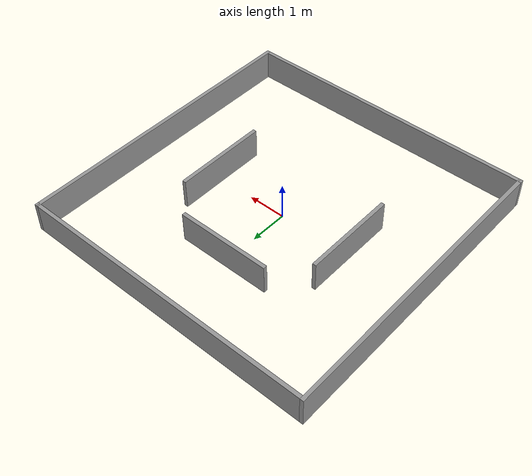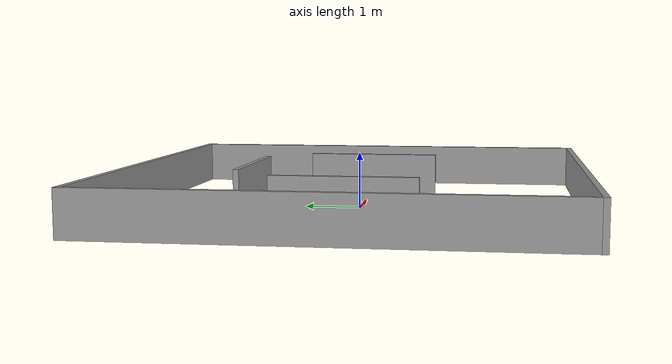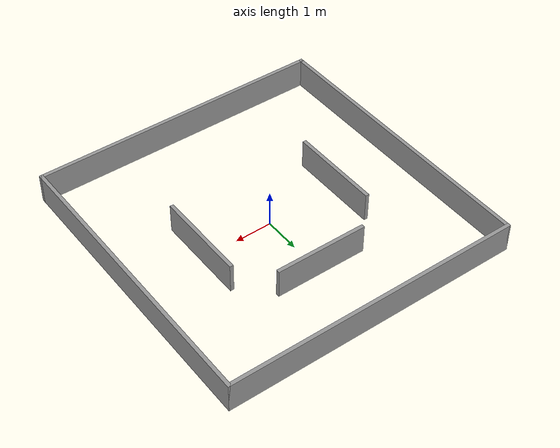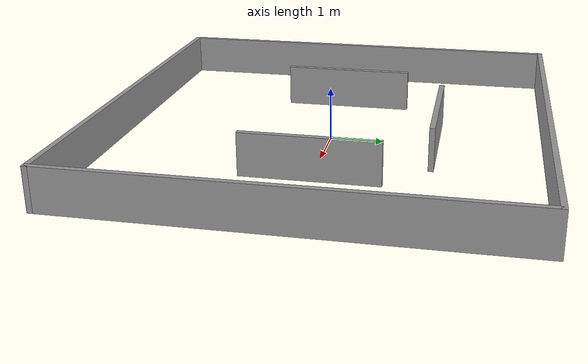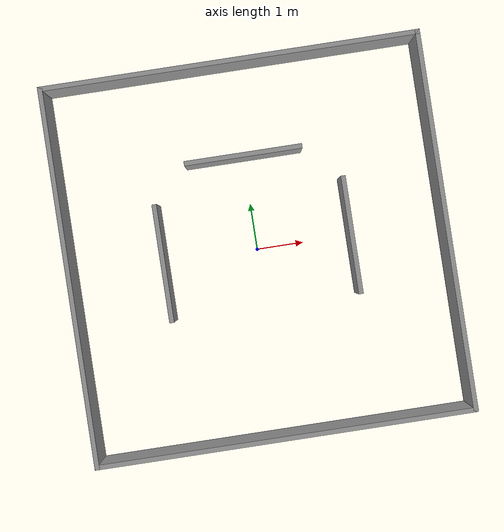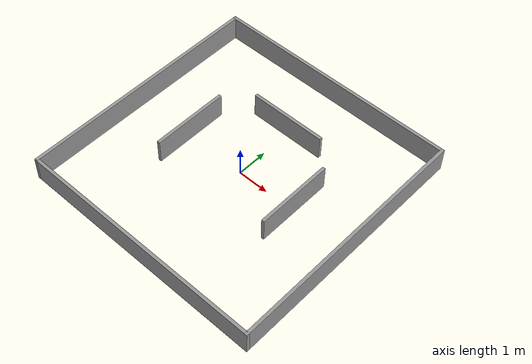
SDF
<?xml version='1.0'?>
<sdf version='1.6'>
  <model name='train_world1'>
    <pose frame=''>0 0 0 0 -0 0</pose>
    <link name='Wall_0'>
      <collision name='Wall_0_Collision'>
        <geometry>
          <box>
            <size>8.1 0.1 0.8</size>
          </box>
        </geometry>
        <pose frame=''>0 0 0.4 0 -0 0</pose>
      </collision>
      <visual name='Wall_0_Visual'>
        <pose frame=''>0 0 0.4 0 -0 0</pose>
        <geometry>
          <box>
            <size>8.1 0.1 0.8</size>
          </box>
        </geometry>
        <material>
          <script>
            <uri>file://media/materials/scripts/gazebo.material</uri>
            <name>Gazebo/Grey</name>
          </script>
          <ambient>1 1 1 1</ambient>
        </material>
      </visual>
      <pose frame=''>4 0 0 0 0 -1.5708</pose>
    </link>
    <link name='Wall_1'>
      <collision name='Wall_1_Collision'>
        <geometry>
          <box>
            <size>8.10002 0.1 0.8</size>
          </box>
        </geometry>
        <pose frame=''>0 0 0.4 0 -0 0</pose>
      </collision>
      <visual name='Wall_1_Visual'>
        <pose frame=''>0 0 0.4 0 -0 0</pose>
        <geometry>
          <box>
            <size>8.10002 0.1 0.8</size>
          </box>
        </geometry>
        <material>
          <script>
            <uri>file://media/materials/scripts/gazebo.material</uri>
            <name>Gazebo/Grey</name>
          </script>
          <ambient>1 1 1 1</ambient>
        </material>
      </visual>
      <pose frame=''>0 -4 0 0 -0 3.14159</pose>
    </link>
    <link name='Wall_2'>
      <collision name='Wall_2_Collision'>
        <geometry>
          <box>
            <size>8.1 0.1 0.8</size>
          </box>
        </geometry>
        <pose frame=''>0 0 0.4 0 -0 0</pose>
      </collision>
      <visual name='Wall_2_Visual'>
        <pose frame=''>0 0 0.4 0 -0 0</pose>
        <geometry>
          <box>
            <size>8.1 0.1 0.8</size>
          </box>
        </geometry>
        <material>
          <script>
            <uri>file://media/materials/scripts/gazebo.material</uri>
            <name>Gazebo/Grey</name>
          </script>
          <ambient>1 1 1 1</ambient>
        </material>
      </visual>
      <pose frame=''>-4 0 0 0 -0 1.5708</pose>
    </link>
    <link name='Wall_3'>
      <collision name='Wall_3_Collision'>
        <geometry>
          <box>
            <size>8.1 0.1 0.8</size>
          </box>
        </geometry>
        <pose frame=''>0 0 0.4 0 -0 0</pose>
      </collision>
      <visual name='Wall_3_Visual'>
        <pose frame=''>0 0 0.4 0 -0 0</pose>
        <geometry>
          <box>
            <size>8.1 0.1 0.8</size>
          </box>
        </geometry>
        <material>
          <script>
            <uri>file://media/materials/scripts/gazebo.material</uri>
            <name>Gazebo/Grey</name>
          </script>
          <ambient>1 1 1 1</ambient>
        </material>
      </visual>
      <pose frame=''>0 4 0 0 -0 0</pose>
    </link>
	<link name='Wall_4'>
        <collision name='Wall_4_Collision'>
          <geometry>
            <box>
              <size>2.5 0.1 0.8</size>
            </box>
          </geometry>
          <pose frame=''>0 0 0.4 0 -0 0</pose>
          <max_contacts>10</max_contacts>
          <surface>
            <contact>
              <ode/>
            </contact>
            <bounce/>
            <friction>
              <torsional>
                <ode/>
              </torsional>
              <ode/>
            </friction>
          </surface>
        </collision>
        <visual name='Wall_4_Visual'>
          <pose frame=''>0 0 0.4 0 -0 0</pose>
          <geometry>
            <box>
              <size>2.5 0.1 0.8</size>
            </box>
          </geometry>
          <material>
            <script>
              <uri>file://media/materials/scripts/gazebo.material</uri>
              <name>Gazebo/Grey</name>
            </script>
            <ambient>1 1 1 1</ambient>
          </material>
        </visual>
        <pose frame=''>2 0 0 0 0 -1.5708</pose>
        <self_collide>0</self_collide>
        <kinematic>0</kinematic>
        <gravity>1</gravity>
      </link>
      <link name='Wall_5'>
        <collision name='Wall_5_Collision'>
          <geometry>
            <box>
              <size>2.5 0.1 0.8</size>
            </box>
          </geometry>
          <pose frame=''>0 0 0.4 0 -0 0</pose>
          <max_contacts>10</max_contacts>
          <surface>
            <contact>
              <ode/>
            </contact>
            <bounce/>
            <friction>
              <torsional>
                <ode/>
              </torsional>
              <ode/>
            </friction>
          </surface>
        </collision>
        <visual name='Wall_5_Visual'>
          <pose frame=''>0 0 0.4 0 -0 0</pose>
          <geometry>
            <box>
              <size>2.5 0.1 0.8</size>
            </box>
          </geometry>
          <material>
            <script>
              <uri>file://media/materials/scripts/gazebo.material</uri>
              <name>Gazebo/Grey</name>
            </script>
            <ambient>1 1 1 1</ambient>
          </material>
        </visual>
        <pose frame=''>-2 0 0 0 -0 1.5708</pose>
        <self_collide>0</self_collide>
        <kinematic>0</kinematic>
        <gravity>1</gravity>
      </link>
      <link name='Wall_6'>
        <collision name='Wall_6_Collision'>
          <geometry>
            <box>
              <size>2.5 0.1 0.8</size>
            </box>
          </geometry>
          <pose frame=''>0 0 0.4 0 -0 0</pose>
          <max_contacts>10</max_contacts>
          <surface>
            <contact>
              <ode/>
            </contact>
            <bounce/>
            <friction>
              <torsional>
                <ode/>
              </torsional>
              <ode/>
            </friction>
          </surface>
        </collision>
        <visual name='Wall_6_Visual'>
          <pose frame=''>0 0 0.4 0 -0 0</pose>
          <geometry>
            <box>
              <size>2.5 0.1 0.8</size>
            </box>
          </geometry>
          <material>
            <script>
              <uri>file://media/materials/scripts/gazebo.material</uri>
              <name>Gazebo/Grey</name>
            </script>
            <ambient>1 1 1 1</ambient>
          </material>
        </visual>
        <pose frame=''>-2 0 0 0 -0 1.5708</pose>
        <self_collide>0</self_collide>
        <kinematic>0</kinematic>
        <gravity>1</gravity>
      </link>
      <link name='Wall_7'>
        <collision name='Wall_7_Collision'>
          <geometry>
            <box>
              <size>2.5 0.1 0.8</size>
            </box>
          </geometry>
          <pose frame=''>0 0 0.4 0 -0 0</pose>
          <max_contacts>10</max_contacts>
          <surface>
            <contact>
              <ode/>
            </contact>
            <bounce/>
            <friction>
              <torsional>
                <ode/>
              </torsional>
              <ode/>
            </friction>
          </surface>
        </collision>
        <visual name='Wall_7_Visual'>
          <pose frame=''>0 0 0.4 0 -0 0</pose>
          <geometry>
            <box>
              <size>2.5 0.1 0.8</size>
            </box>
          </geometry>
          <material>
            <script>
              <uri>file://media/materials/scripts/gazebo.material</uri>
              <name>Gazebo/Grey</name>
            </script>
            <ambient>1 1 1 1</ambient>
          </material>
        </visual>
        <pose frame=''>0 2 0 0 -0 0</pose>
        <self_collide>0</self_collide>
        <kinematic>0</kinematic>
        <gravity>1</gravity>
      </link>
    <static>1</static>
  </model>
</sdf>
